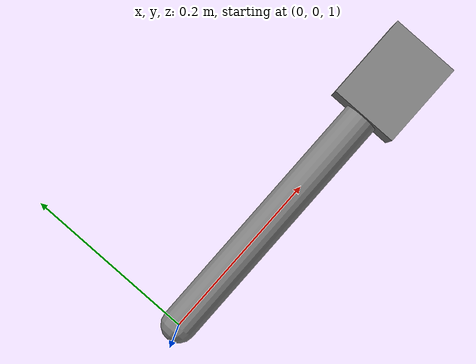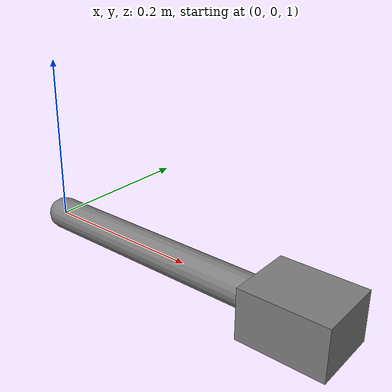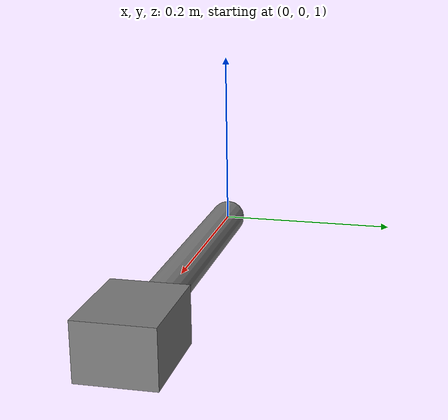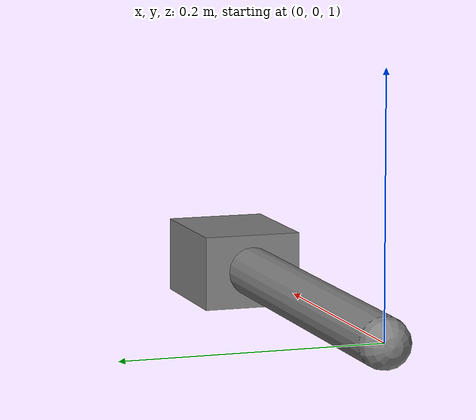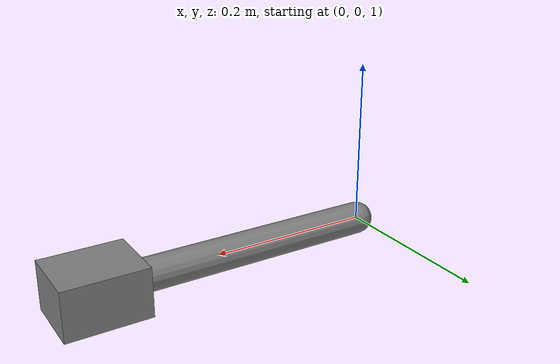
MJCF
<mujoco model="conn_free2_implicitfast_PGS">
  <option timestep="0.002" integrator="implicitfast" solver="PGS"/>
  <worldbody>
    <body name="a" pos="0 0 1">
      <joint name="h" type="hinge" axis="0 1 0" damping="0.1"/>
      <geom type="capsule" fromto="0 0 0 0.3 0 0" size="0.02" mass="1" contype="0" conaffinity="0"/>
    </body>
    <body name="b" pos="0.35 0 1">
      <freejoint/>
      <geom type="box" size="0.05 0.04 0.03" mass="2" contype="0" conaffinity="0"/>
    </body>
  </worldbody>
  <equality>
    <connect body1="a" body2="b" anchor="0.3 0 0"/>
  </equality>
</mujoco>
